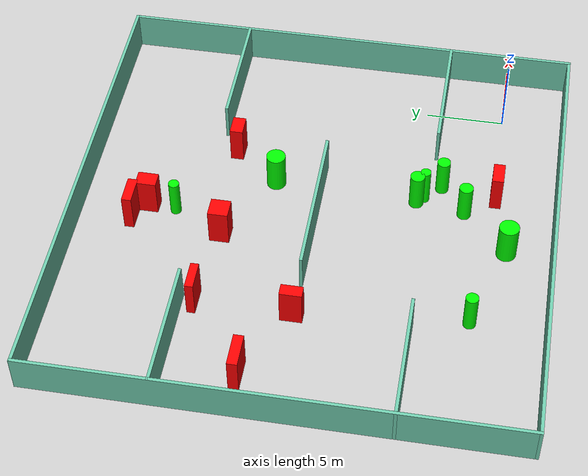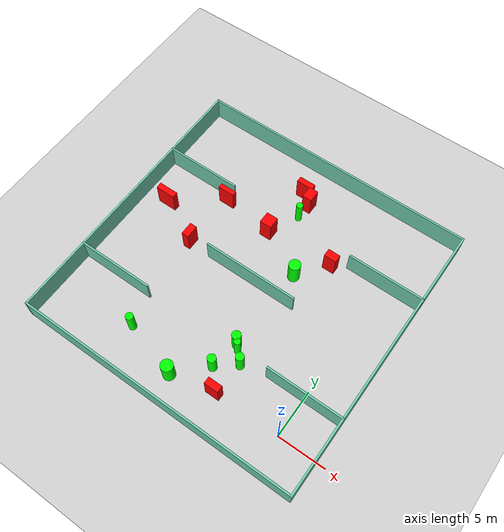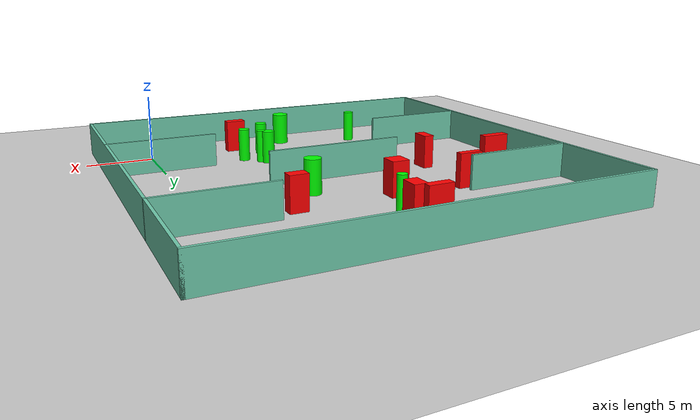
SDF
<sdf version="1.7">
 <world name="default">
  <light name="sun" type="directional">
   <pose>0 0 10 0 -0 0</pose>
   <diffuse>0.8 0.8 0.8 1</diffuse>
   <specular>0.2 0.2 0.2 1</specular>
   <attenuation>
    <range>1000</range>
    <constant>0.9</constant>
    <linear>0.01</linear>
    <quadratic>0.001</quadratic>
   </attenuation>
   <direction>-0.5 0.1 -0.9</direction>
   <spot><inner_angle>0</inner_angle><outer_angle>0</outer_angle><falloff>0</falloff></spot>
  </light>
  <model name="ground_plane">
   <static>1</static>
   <link name="link">
    <collision name="collision">
     <geometry><plane><normal>0 0 1</normal><size>100 100</size></plane></geometry>
     <surface>
      <contact><collide_bitmask>65535</collide_bitmask></contact>
      <friction><ode><mu>100</mu><mu2>50</mu2></ode></friction>
     </surface>
    </collision>
    <visual name="visual">
     <cast_shadows>0</cast_shadows>
     <geometry><plane><normal>0 0 1</normal><size>100 100</size></plane></geometry>
     <material>
      <script><uri>file://media/materials/scripts/gazebo.material</uri><name>Gazebo/Grey</name></script>
     </material>
    </visual>
   </link>
  </model>
  <gravity>0 0 -9.8</gravity>
  <magnetic_field>6e-06 2.3e-05 -4.2e-05</magnetic_field>
  <atmosphere type="adiabatic"/>
  <physics type="ode">
   <max_step_size>0.001</max_step_size>
   <real_time_factor>1</real_time_factor>
   <real_time_update_rate>1000</real_time_update_rate>
  </physics>
  <scene><ambient>0.4 0.4 0.4 1</ambient><background>0.7 0.7 0.7 1</background><shadows>1</shadows></scene>
  <spherical_coordinates>
   <surface_model>EARTH_WGS84</surface_model>
   <latitude_deg>0</latitude_deg>
   <longitude_deg>0</longitude_deg>
   <elevation>0</elevation>
   <heading_deg>0</heading_deg>
  </spherical_coordinates>
  <model name="my_base_walls">
   <link name="Wall_10">
    <collision name="Wall_10_Collision">
     <geometry><box><size>8.2 0.2 2.5</size></box></geometry>
     <pose>0 0 1.25 0 -0 0</pose>
    </collision>
    <visual name="Wall_10_Visual">
     <pose>0 0 1.25 0 -0 0</pose>
     <geometry><box><size>8.2 0.2 2.5</size></box></geometry>
     <material>
      <script><uri>file://media/materials/scripts/gazebo.material</uri><name>Gazebo/Grey</name></script>
      <ambient>0.435294 0.796078 0.67451 1</ambient>
     </material>
     <meta><layer>0</layer></meta>
    </visual>
    <pose>-11 -7 0 0 -0 0</pose>
   </link>
   <link name="Wall_12">
    <collision name="Wall_12_Collision">
     <geometry><box><size>8.2 0.2 2.5</size></box></geometry>
     <pose>0 0 1.25 0 -0 0</pose>
    </collision>
    <visual name="Wall_12_Visual">
     <pose>0 0 1.25 0 -0 0</pose>
     <geometry><box><size>8.2 0.2 2.5</size></box></geometry>
     <material>
      <script><uri>file://media/materials/scripts/gazebo.material</uri><name>Gazebo/Grey</name></script>
      <ambient>0.435294 0.796078 0.67451 1</ambient>
     </material>
     <meta><layer>0</layer></meta>
    </visual>
    <pose>-11 7 0 0 -0 0</pose>
   </link>
   <link name="Wall_14">
    <collision name="Wall_14_Collision">
     <geometry><box><size>8.2 0.2 2.5</size></box></geometry>
     <pose>0 0 1.25 0 -0 0</pose>
    </collision>
    <visual name="Wall_14_Visual">
     <pose>0 0 1.25 0 -0 0</pose>
     <geometry><box><size>8.2 0.2 2.5</size></box></geometry>
     <material>
      <script><uri>file://media/materials/scripts/gazebo.material</uri><name>Gazebo/Grey</name></script>
      <ambient>0.435294 0.796078 0.67451 1</ambient>
     </material>
     <meta><layer>0</layer></meta>
    </visual>
    <pose>11 7 0 0 -0 3.14159</pose>
   </link>
   <link name="Wall_16">
    <collision name="Wall_16_Collision">
     <geometry><box><size>10.2 0.2 2.5</size></box></geometry>
     <pose>0 0 1.25 0 -0 0</pose>
    </collision>
    <visual name="Wall_16_Visual">
     <pose>0 0 1.25 0 -0 0</pose>
     <geometry><box><size>10.2 0.2 2.5</size></box></geometry>
     <material>
      <script><uri>file://media/materials/scripts/gazebo.material</uri><name>Gazebo/Grey</name></script>
      <ambient>0.435294 0.796078 0.67451 1</ambient>
     </material>
     <meta><layer>0</layer></meta>
    </visual>
    <pose>0 0 0 0 -0 3.14159</pose>
   </link>
   <link name="Wall_2">
    <collision name="Wall_2_Collision">
     <geometry><box><size>30.2 0.2 2.5</size></box></geometry>
     <pose>0 0 1.25 0 -0 0</pose>
    </collision>
    <visual name="Wall_2_Visual">
     <pose>0 0 1.25 0 -0 0</pose>
     <geometry><box><size>30.2 0.2 2.5</size></box></geometry>
     <material>
      <script><uri>file://media/materials/scripts/gazebo.material</uri><name>Gazebo/Grey</name></script>
      <ambient>0.435294 0.796078 0.67451 1</ambient>
     </material>
     <meta><layer>0</layer></meta>
    </visual>
    <pose>0 -15 0 0 -0 3.14159</pose>
   </link>
   <link name="Wall_3">
    <collision name="Wall_3_Collision">
     <geometry><box><size>30.2 0.2 2.5</size></box></geometry>
     <pose>0 0 1.25 0 -0 0</pose>
    </collision>
    <visual name="Wall_3_Visual">
     <pose>0 0 1.25 0 -0 0</pose>
     <geometry><box><size>30.2 0.2 2.5</size></box></geometry>
     <material>
      <script><uri>file://media/materials/scripts/gazebo.material</uri><name>Gazebo/Grey</name></script>
      <ambient>0.435294 0.796078 0.67451 1</ambient>
     </material>
     <meta><layer>0</layer></meta>
    </visual>
    <pose>-15 0 0 0 -0 1.5708</pose>
   </link>
   <link name="Wall_4">
    <collision name="Wall_4_Collision">
     <geometry><box><size>30.2 0.2 2.5</size></box></geometry>
     <pose>0 0 1.25 0 -0 0</pose>
    </collision>
    <visual name="Wall_4_Visual">
     <pose>0 0 1.25 0 -0 0</pose>
     <geometry><box><size>30.2 0.2 2.5</size></box></geometry>
     <material>
      <script><uri>file://media/materials/scripts/gazebo.material</uri><name>Gazebo/Grey</name></script>
      <ambient>0.435294 0.796078 0.67451 1</ambient>
     </material>
     <meta><layer>0</layer></meta>
    </visual>
    <pose>0 15 0 0 -0 0</pose>
   </link>
   <link name="Wall_6">
    <collision name="Wall_6_Collision">
     <geometry><box><size>30.2 0.2 2.5</size></box></geometry>
     <pose>0 0 1.25 0 -0 0</pose>
    </collision>
    <visual name="Wall_6_Visual">
     <pose>0 0 1.25 0 -0 0</pose>
     <geometry><box><size>30.2 0.2 2.5</size></box></geometry>
     <material>
      <script><uri>file://media/materials/scripts/gazebo.material</uri><name>Gazebo/Grey</name></script>
      <ambient>0.435294 0.796078 0.67451 1</ambient>
     </material>
     <meta><layer>0</layer></meta>
    </visual>
    <pose>15 0 0 0 -0 1.5708</pose>
   </link>
   <link name="Wall_8">
    <collision name="Wall_8_Collision">
     <geometry><box><size>8.2 0.2 2.5</size></box></geometry>
     <pose>0 0 1.25 0 -0 0</pose>
    </collision>
    <visual name="Wall_8_Visual">
     <pose>0 0 1.25 0 -0 0</pose>
     <geometry><box><size>8.2 0.2 2.5</size></box></geometry>
     <material>
      <script><uri>file://media/materials/scripts/gazebo.material</uri><name>Gazebo/Grey</name></script>
      <ambient>0.435294 0.796078 0.67451 1</ambient>
     </material>
     <meta><layer>0</layer></meta>
    </visual>
    <pose>11 -7 0 0 -0 3.14159</pose>
   </link>
   <static>1</static>
   <pose>-11 11 0 0 -0 0</pose>
  </model>
  <model name="cylinder1">
   <static>1</static>
   <link name="link">
    <inertial>
     <mass>1</mass>
     <inertia><ixx>0.5</ixx><ixy>0</ixy><ixz>0</ixz><iyy>0.5</iyy><iyz>0</iyz><izz>1</izz></inertia>
    </inertial>
    <collision name="collision">
     <geometry><cylinder><radius>0.4633866052599805</radius><length>2.5</length></cylinder></geometry>
    </collision>
    <visual name="visual">
     <geometry><cylinder><radius>0.4633866052599805</radius><length>2.5</length></cylinder></geometry>
     <material>
      <ambient>0 1 0 1</ambient>
      <diffuse>0 1 0 1</diffuse>
      <specular>0.1 0.1 0.1 1</specular>
      <emissive>0 0 0 0</emissive>
     </material>
    </visual>
   </link>
   <pose>-8.113494317331742 4.876204596366228 1.25 0 0 0</pose>
  </model>
  <model name="cylinder2">
   <static>1</static>
   <link name="link">
    <inertial>
     <mass>1</mass>
     <inertia><ixx>0.5</ixx><ixy>0</ixy><ixz>0</ixz><iyy>0.5</iyy><iyz>0</iyz><izz>1</izz></inertia>
    </inertial>
    <collision name="collision">
     <geometry><cylinder><radius>0.4209864504679661</radius><length>2.5</length></cylinder></geometry>
    </collision>
    <visual name="visual">
     <geometry><cylinder><radius>0.4209864504679661</radius><length>2.5</length></cylinder></geometry>
     <material>
      <ambient>0 1 0 1</ambient>
      <diffuse>0 1 0 1</diffuse>
      <specular>0.1 0.1 0.1 1</specular>
      <emissive>0 0 0 0</emissive>
     </material>
    </visual>
   </link>
   <pose>-6.628388998831253 3.3669611800417476 1.25 0 0 0</pose>
  </model>
  <model name="cylinder3">
   <static>1</static>
   <link name="link">
    <inertial>
     <mass>1</mass>
     <inertia><ixx>0.5</ixx><ixy>0</ixy><ixz>0</ixz><iyy>0.5</iyy><iyz>0</iyz><izz>1</izz></inertia>
    </inertial>
    <collision name="collision">
     <geometry><cylinder><radius>0.39655169821803304</radius><length>2.5</length></cylinder></geometry>
    </collision>
    <visual name="visual">
     <geometry><cylinder><radius>0.39655169821803304</radius><length>2.5</length></cylinder></geometry>
     <material>
      <ambient>0 1 0 1</ambient>
      <diffuse>0 1 0 1</diffuse>
      <specular>0.1 0.1 0.1 1</specular>
      <emissive>0 0 0 0</emissive>
     </material>
    </visual>
   </link>
   <pose>-17.30251143559612 0.5876942308297273 1.25 0 0 0</pose>
  </model>
  <model name="cylinder4">
   <static>1</static>
   <link name="link">
    <inertial>
     <mass>1</mass>
     <inertia><ixx>0.5</ixx><ixy>0</ixy><ixz>0</ixz><iyy>0.5</iyy><iyz>0</iyz><izz>1</izz></inertia>
    </inertial>
    <collision name="collision">
     <geometry><cylinder><radius>0.6312577855724952</radius><length>2.5</length></cylinder></geometry>
    </collision>
    <visual name="visual">
     <geometry><cylinder><radius>0.6312577855724952</radius><length>2.5</length></cylinder></geometry>
     <material>
      <ambient>0 1 0 1</ambient>
      <diffuse>0 1 0 1</diffuse>
      <specular>0.1 0.1 0.1 1</specular>
      <emissive>0 0 0 0</emissive>
     </material>
    </visual>
   </link>
   <pose>-11.46300045504006 -1.14696540640867 1.25 0 0 0</pose>
  </model>
  <model name="cylinder5">
   <static>1</static>
   <link name="link">
    <inertial>
     <mass>1</mass>
     <inertia><ixx>0.5</ixx><ixy>0</ixy><ixz>0</ixz><iyy>0.5</iyy><iyz>0</iyz><izz>1</izz></inertia>
    </inertial>
    <collision name="collision">
     <geometry><cylinder><radius>0.34219176749871977</radius><length>2.5</length></cylinder></geometry>
    </collision>
    <visual name="visual">
     <geometry><cylinder><radius>0.34219176749871977</radius><length>2.5</length></cylinder></geometry>
     <material>
      <ambient>0 1 0 1</ambient>
      <diffuse>0 1 0 1</diffuse>
      <specular>0.1 0.1 0.1 1</specular>
      <emissive>0 0 0 0</emissive>
     </material>
    </visual>
   </link>
   <pose>-11.220332175178726 19.92498167933523 1.25 0 0 0</pose>
  </model>
  <model name="cylinder6">
   <static>1</static>
   <link name="link">
    <inertial>
     <mass>1</mass>
     <inertia><ixx>0.5</ixx><ixy>0</ixy><ixz>0</ixz><iyy>0.5</iyy><iyz>0</iyz><izz>1</izz></inertia>
    </inertial>
    <collision name="collision">
     <geometry><cylinder><radius>0.6118371336418014</radius><length>2.5</length></cylinder></geometry>
    </collision>
    <visual name="visual">
     <geometry><cylinder><radius>0.6118371336418014</radius><length>2.5</length></cylinder></geometry>
     <material>
      <ambient>0 1 0 1</ambient>
      <diffuse>0 1 0 1</diffuse>
      <specular>0.1 0.1 0.1 1</specular>
      <emissive>0 0 0 0</emissive>
     </material>
    </visual>
   </link>
   <pose>-7.8329872037098305 14.017470802203455 1.25 0 0 0</pose>
  </model>
  <model name="cylinder7">
   <static>1</static>
   <link name="link">
    <inertial>
     <mass>1</mass>
     <inertia><ixx>0.5</ixx><ixy>0</ixy><ixz>0</ixz><iyy>0.5</iyy><iyz>0</iyz><izz>1</izz></inertia>
    </inertial>
    <collision name="collision">
     <geometry><cylinder><radius>0.3304928792552629</radius><length>2.5</length></cylinder></geometry>
    </collision>
    <visual name="visual">
     <geometry><cylinder><radius>0.3304928792552629</radius><length>2.5</length></cylinder></geometry>
     <material>
      <ambient>0 1 0 1</ambient>
      <diffuse>0 1 0 1</diffuse>
      <specular>0.1 0.1 0.1 1</specular>
      <emissive>0 0 0 0</emissive>
     </material>
    </visual>
   </link>
   <pose>-7.66926720380895 4.409791126727383 1.25 0 0 0</pose>
  </model>
  <model name="cylinder8">
   <static>1</static>
   <link name="link">
    <inertial>
     <mass>1</mass>
     <inertia><ixx>0.5</ixx><ixy>0</ixy><ixz>0</ixz><iyy>0.5</iyy><iyz>0</iyz><izz>1</izz></inertia>
    </inertial>
    <collision name="collision">
     <geometry><cylinder><radius>0.44302101719363474</radius><length>2.5</length></cylinder></geometry>
    </collision>
    <visual name="visual">
     <geometry><cylinder><radius>0.44302101719363474</radius><length>2.5</length></cylinder></geometry>
     <material>
      <ambient>0 1 0 1</ambient>
      <diffuse>0 1 0 1</diffuse>
      <specular>0.1 0.1 0.1 1</specular>
      <emissive>0 0 0 0</emissive>
     </material>
    </visual>
   </link>
   <pose>-8.613210900171872 1.7563014318642463 1.25 0 0 0</pose>
  </model>
  <model name="box1">
   <static>1</static>
   <link name="link">
    <inertial>
     <mass>1</mass>
     <inertia><ixx>0.083</ixx><ixy>0</ixy><ixz>0</ixz><iyy>0.083</iyy><iyz>0</iyz><izz>0.083</izz></inertia>
    </inertial>
    <collision name="collision">
     <geometry><box><size>1.2620447876070742 1.261745963765035 2.5</size></box></geometry>
    </collision>
    <visual name="visual">
     <geometry><box><size>1.2620447876070742 1.261745963765035 2.5</size></box></geometry>
     <material>
      <ambient>1 0 0 1</ambient>
      <diffuse>1 0 0 1</diffuse>
      <specular>0.1 0.1 0.1 1</specular>
      <emissive>0 0 0 0</emissive>
     </material>
    </visual>
    <sensor name="my_contact" type="contact">
     <contact><collision>box_collision</collision><topic>__default_topic__</topic></contact>
    </sensor>
   </link>
   <pose>-12.736359741170334 16.683291491579304 1.25 0 0 0</pose>
  </model>
  <model name="box2">
   <static>1</static>
   <link name="link">
    <inertial>
     <mass>1</mass>
     <inertia><ixx>0.083</ixx><ixy>0</ixy><ixz>0</ixz><iyy>0.083</iyy><iyz>0</iyz><izz>0.083</izz></inertia>
    </inertial>
    <collision name="collision">
     <geometry><box><size>1.7956451084107832 0.6202382104504479 2.5</size></box></geometry>
    </collision>
    <visual name="visual">
     <geometry><box><size>1.7956451084107832 0.6202382104504479 2.5</size></box></geometry>
     <material>
      <ambient>1 0 0 1</ambient>
      <diffuse>1 0 0 1</diffuse>
      <specular>0.1 0.1 0.1 1</specular>
      <emissive>0 0 0 0</emissive>
     </material>
    </visual>
    <sensor name="my_contact" type="contact">
     <contact><collision>box_collision</collision><topic>__default_topic__</topic></contact>
    </sensor>
   </link>
   <pose>-12.16653311559992 22.535488642708376 1.25 0 0 0</pose>
  </model>
  <model name="box3">
   <static>1</static>
   <link name="link">
    <inertial>
     <mass>1</mass>
     <inertia><ixx>0.083</ixx><ixy>0</ixy><ixz>0</ixz><iyy>0.083</iyy><iyz>0</iyz><izz>0.083</izz></inertia>
    </inertial>
    <collision name="collision">
     <geometry><box><size>1.5032413490164183 0.7303084839699374 2.5</size></box></geometry>
    </collision>
    <visual name="visual">
     <geometry><box><size>1.5032413490164183 0.7303084839699374 2.5</size></box></geometry>
     <material>
      <ambient>1 0 0 1</ambient>
      <diffuse>1 0 0 1</diffuse>
      <specular>0.1 0.1 0.1 1</specular>
      <emissive>0 0 0 0</emissive>
     </material>
    </visual>
    <sensor name="my_contact" type="contact">
     <contact><collision>box_collision</collision><topic>__default_topic__</topic></contact>
    </sensor>
   </link>
   <pose>-6.994672976507651 -0.1456712818826178 1.25 0 0 0</pose>
  </model>
  <model name="box4">
   <static>1</static>
   <link name="link">
    <inertial>
     <mass>1</mass>
     <inertia><ixx>0.083</ixx><ixy>0</ixy><ixz>0</ixz><iyy>0.083</iyy><iyz>0</iyz><izz>0.083</izz></inertia>
    </inertial>
    <collision name="collision">
     <geometry><box><size>2.0977868867619716 0.63299988968497 2.5</size></box></geometry>
    </collision>
    <visual name="visual">
     <geometry><box><size>2.0977868867619716 0.63299988968497 2.5</size></box></geometry>
     <material>
      <ambient>1 0 0 1</ambient>
      <diffuse>1 0 0 1</diffuse>
      <specular>0.1 0.1 0.1 1</specular>
      <emissive>0 0 0 0</emissive>
     </material>
    </visual>
    <sensor name="my_contact" type="contact">
     <contact><collision>box_collision</collision><topic>__default_topic__</topic></contact>
    </sensor>
   </link>
   <pose>-23.229033985704618 13.555707252457786 1.25 0 0 0</pose>
  </model>
  <model name="box5">
   <static>1</static>
   <link name="link">
    <inertial>
     <mass>1</mass>
     <inertia><ixx>0.083</ixx><ixy>0</ixy><ixz>0</ixz><iyy>0.083</iyy><iyz>0</iyz><izz>0.083</izz></inertia>
    </inertial>
    <collision name="collision">
     <geometry><box><size>0.9782010310913749 1.2965266045842352 2.5</size></box></geometry>
    </collision>
    <visual name="visual">
     <geometry><box><size>0.9782010310913749 1.2965266045842352 2.5</size></box></geometry>
     <material>
      <ambient>1 0 0 1</ambient>
      <diffuse>1 0 0 1</diffuse>
      <specular>0.1 0.1 0.1 1</specular>
      <emissive>0 0 0 0</emissive>
     </material>
    </visual>
    <sensor name="my_contact" type="contact">
     <contact><collision>box_collision</collision><topic>__default_topic__</topic></contact>
    </sensor>
   </link>
   <pose>-11.088886530512926 21.673848203295954 1.25 0 0 0</pose>
  </model>
  <model name="box6">
   <static>1</static>
   <link name="link">
    <inertial>
     <mass>1</mass>
     <inertia><ixx>0.083</ixx><ixy>0</ixy><ixz>0</ixz><iyy>0.083</iyy><iyz>0</iyz><izz>0.083</izz></inertia>
    </inertial>
    <collision name="collision">
     <geometry><box><size>1.3151090067130773 0.8355578600058496 2.5</size></box></geometry>
    </collision>
    <visual name="visual">
     <geometry><box><size>1.3151090067130773 0.8355578600058496 2.5</size></box></geometry>
     <material>
      <ambient>1 0 0 1</ambient>
      <diffuse>1 0 0 1</diffuse>
      <specular>0.1 0.1 0.1 1</specular>
      <emissive>0 0 0 0</emissive>
     </material>
    </visual>
    <sensor name="my_contact" type="contact">
     <contact><collision>box_collision</collision><topic>__default_topic__</topic></contact>
    </sensor>
   </link>
   <pose>-5.453312916888748 16.965493038102295 1.25 0 0 0</pose>
  </model>
  <model name="box7">
   <static>1</static>
   <link name="link">
    <inertial>
     <mass>1</mass>
     <inertia><ixx>0.083</ixx><ixy>0</ixy><ixz>0</ixz><iyy>0.083</iyy><iyz>0</iyz><izz>0.083</izz></inertia>
    </inertial>
    <collision name="collision">
     <geometry><box><size>0.7588275623481882 1.3839563369131744 2.5</size></box></geometry>
    </collision>
    <visual name="visual">
     <geometry><box><size>0.7588275623481882 1.3839563369131744 2.5</size></box></geometry>
     <material>
      <ambient>1 0 0 1</ambient>
      <diffuse>1 0 0 1</diffuse>
      <specular>0.1 0.1 0.1 1</specular>
      <emissive>0 0 0 0</emissive>
     </material>
    </visual>
    <sensor name="my_contact" type="contact">
     <contact><collision>box_collision</collision><topic>__default_topic__</topic></contact>
    </sensor>
   </link>
   <pose>-18.479924570824434 11.157058204412492 1.25 0 0 0</pose>
  </model>
  <model name="box8">
   <static>1</static>
   <link name="link">
    <inertial>
     <mass>1</mass>
     <inertia><ixx>0.083</ixx><ixy>0</ixy><ixz>0</ixz><iyy>0.083</iyy><iyz>0</iyz><izz>0.083</izz></inertia>
    </inertial>
    <collision name="collision">
     <geometry><box><size>1.7893513861241672 0.5161220221653574 2.5</size></box></geometry>
    </collision>
    <visual name="visual">
     <geometry><box><size>1.7893513861241672 0.5161220221653574 2.5</size></box></geometry>
     <material>
      <ambient>1 0 0 1</ambient>
      <diffuse>1 0 0 1</diffuse>
      <specular>0.1 0.1 0.1 1</specular>
      <emissive>0 0 0 0</emissive>
     </material>
    </visual>
    <sensor name="my_contact" type="contact">
     <contact><collision>box_collision</collision><topic>__default_topic__</topic></contact>
    </sensor>
   </link>
   <pose>-18.274732547630755 17.198601371859844 1.25 0 0 0</pose>
  </model>
 </world>
</sdf>
